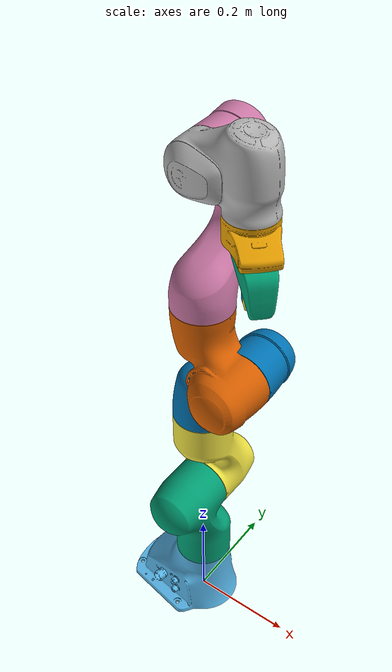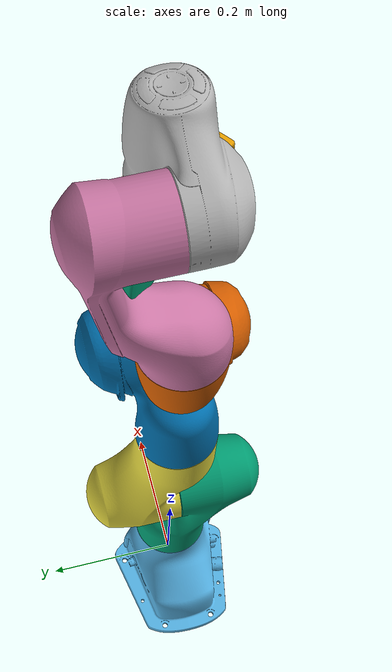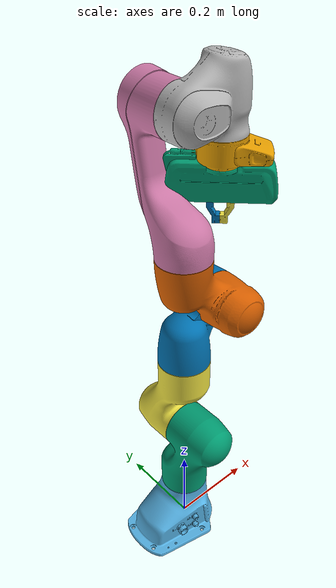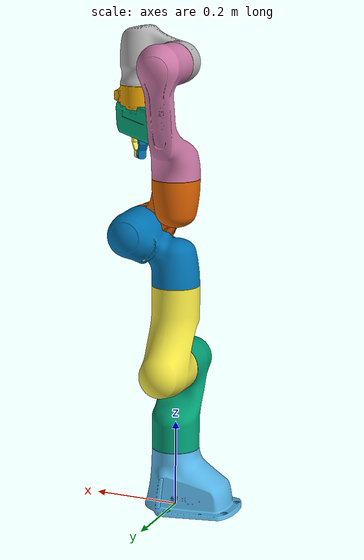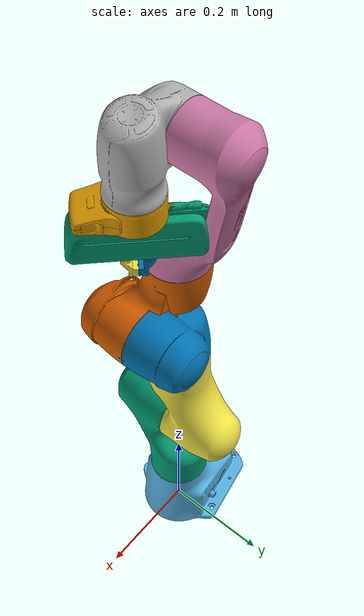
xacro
<?xml version="1.0"?>
<robot xmlns:xacro="http://www.ros.org/wiki/xacro" name="panda">
    <xacro:arg name="initial_positions_file" default="initial_positions.yaml" />

    <!-- Import panda urdf file -->
    <xacro:include filename="$(find robot_description)/urdf/panda.urdf.xacro" />

    <!-- Import control_xacro -->
    <xacro:include filename="panda.ros2_control.xacro" />

    <xacro:panda_ros2_control name="FakeSystem" initial_positions_file="$(arg initial_positions_file)"/>

</robot>

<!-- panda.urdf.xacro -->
<robot name="panda" xmlns:xacro="http://www.ros.org/wiki/xacro">

    <xacro:include filename="$(find robot_description)/urdf/panda.macro.xacro" />
    <xacro:include filename="$(find robot_description)/urdf/panda.ros2_control.xacro" />

    <xacro:panda />
    <xacro:panda_ros2_control name="panda_system" />

    <gazebo>
        <plugin name="gazebo_ros2_control" filename="libgazebo_ros2_control.so">
            <parameters>$(find robot_bringup)/config/controllers.yaml</parameters>
        </plugin>
    </gazebo>

</robot>

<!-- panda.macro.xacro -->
<robot xmlns:xacro="http://www.ros.org/wiki/xacro">
    <xacro:macro name="panda">

        <xacro:include filename="$(find robot_description)/urdf/robot.materials.xacro" />

        <link name="world" />

        <joint name="world_joint" type="fixed">
            <origin xyz="0 0 0" rpy="0 0 0" />
            <parent link="world" />
            <child link="panda_link0" />
        </joint>

        <link name="panda_link0">
            <visual>
                <geometry>
                    <mesh
                        filename="package://robot_description/meshes/visual/link0.stl" />
                </geometry>
            </visual>
            <collision>
                <geometry>
                    <mesh
                        filename="package://robot_description/meshes/collision/link0.stl" />
                </geometry>
            </collision>
            <inertial>

                <origin rpy="0 0 0" xyz="-0.041018 -0.00014 0.049974" />
                <mass value="0.629769" />
                <inertia ixx="0.00315" ixy="8.2904E-07" ixz="0.00015" iyy="0.00388" iyz="8.2299E-06"
                    izz="0.004285" />
            </inertial>
        </link>
        <link name="panda_link1">
            <visual>
                <geometry>
                    <mesh
                        filename="package://robot_description/meshes/visual/link1.stl" />
                </geometry>
            </visual>
            <collision>
                <geometry>
                    <mesh
                        filename="package://robot_description/meshes/collision/link1.stl" />
                </geometry>
            </collision>
            <inertial>
                <origin rpy="0 0 0" xyz="0.003875 0.002081 -0.04762" />
                <mass value="4.970684" />
                <inertia ixx="0.70337" ixy="-0.00013900" ixz="0.0067720" iyy="0.70661"
                    iyz="0.019169" izz="0.0091170" />
            </inertial>
        </link>
        <joint name="panda_joint1" type="revolute">
            <safety_controller k_position="100.0" k_velocity="40.0" soft_lower_limit="-2.8973"
                soft_upper_limit="2.8973" />
            <origin rpy="0 0 0" xyz="0 0 0.333" />
            <parent link="panda_link0" />
            <child link="panda_link1" />
            <axis xyz="0 0 1" />
            <limit effort="87" lower="-2.9671" upper="2.9671" velocity="2.3925" />
        </joint>
        <link name="panda_link2">
            <visual>
                <geometry>
                    <mesh
                        filename="package://robot_description/meshes/visual/link2.stl" />
                </geometry>
            </visual>
            <collision>
                <geometry>
                    <mesh
                        filename="package://robot_description/meshes/collision/link2.stl" />
                </geometry>
            </collision>
            <inertial>
                <origin rpy="0 0 0" xyz=" -0.003141 -0.02872  0.003495" />
                <mass value="0.646926" />
                <inertia ixx="0.0079620" ixy="-3.9250e-3" ixz="1.0254e-02" iyy="2.8110e-02"
                    iyz="7.0400e-04" izz="2.5995e-02" />
            </inertial>
        </link>
        <joint name="panda_joint2" type="revolute">
            <safety_controller k_position="100.0" k_velocity="40.0" soft_lower_limit="-1.7628"
                soft_upper_limit="1.7628" />
            <origin rpy="-1.57079632679 0 0" xyz="0 0 0" />
            <parent link="panda_link1" />
            <child link="panda_link2" />
            <axis xyz="0 0 1" />
            <limit effort="87" lower="-1.8326" upper="1.8326" velocity="2.3925" />
        </joint>
        <link name="panda_link3">
            <visual>
                <geometry>
                    <mesh
                        filename="package://robot_description/meshes/visual/link3.stl" />
                </geometry>
            </visual>
            <collision>
                <geometry>
                    <mesh
                        filename="package://robot_description/meshes/collision/link3.stl" />
                </geometry>
            </collision>
            <inertial>
                <origin rpy="0 0 0" xyz="2.7518e-02 3.9252e-02 -6.6502e-02" />
                <mass value="3.228604" />
                <inertia ixx="3.7242e-02" ixy="-4.7610e-03" ixz="-1.1396e-02" iyy="3.6155e-02"
                    iyz="-1.2805e-02" izz="1.0830e-02" />
            </inertial>
        </link>
        <joint name="panda_joint3" type="revolute">
            <safety_controller k_position="100.0" k_velocity="40.0" soft_lower_limit="-2.8973"
                soft_upper_limit="2.8973" />
            <origin rpy="1.57079632679 0 0" xyz="0 -0.316 0" />
            <parent link="panda_link2" />
            <child link="panda_link3" />
            <axis xyz="0 0 1" />
            <limit effort="87" lower="-2.9671" upper="2.9671" velocity="2.3925" />
        </joint>
        <link name="panda_link4">
            <visual>
                <geometry>
                    <mesh
                        filename="package://robot_description/meshes/visual/link4.stl" />
                </geometry>
            </visual>
            <collision>
                <geometry>
                    <mesh
                        filename="package://robot_description/meshes/collision/link4.stl" />
                </geometry>
            </collision>
            <inertial>
                <origin rpy="0 0 0" xyz="-5.317e-02 1.04419e-01 2.7454e-02" />
                <mass value="3.587895" />
                <inertia ixx="2.5853e-02" ixy="7.7960e-03" ixz="-1.3320e-03" iyy="1.9552e-02"
                    iyz="8.6410e-03" izz="2.8323e-02" />
            </inertial>
        </link>
        <joint name="panda_joint4" type="revolute">
            <safety_controller k_position="100.0" k_velocity="40.0" soft_lower_limit="-3.0718"
                soft_upper_limit="0.0175" />
            <origin rpy="1.57079632679 0 0" xyz="0.0825 0 0" />
            <parent link="panda_link3" />
            <child link="panda_link4" />
            <axis xyz="0 0 1" />
            <limit effort="87" lower="-3.1416" upper="0.0873" velocity="2.3925" />
        </joint>
        <link name="panda_link5">
            <visual>
                <geometry>
                    <mesh
                        filename="package://robot_description/meshes/visual/link5.stl" />
                </geometry>
            </visual>
            <collision>
                <geometry>
                    <mesh
                        filename="package://robot_description/meshes/collision/link5.stl" />
                </geometry>
            </collision>
            <inertial>
                <origin rpy="0 0 0" xyz="-1.1953e-02 4.1065e-02 -3.8437e-02" />
                <mass value="1.225946" />
                <inertia ixx="3.5549e-02" ixy="-2.1170e-03" ixz="-4.0370e-03" iyy="2.9474e-02"
                    iyz="2.2900e-04" izz="8.6270e-03" />
            </inertial>
        </link>
        <joint name="panda_joint5" type="revolute">
            <safety_controller k_position="100.0" k_velocity="40.0" soft_lower_limit="-2.8973"
                soft_upper_limit="2.8973" />
            <origin rpy="-1.57079632679 0 0" xyz="-0.0825 0.384 0" />
            <parent link="panda_link4" />
            <child link="panda_link5" />
            <axis xyz="0 0 1" />
            <limit effort="12" lower="-2.9671" upper="2.9671" velocity="2.8710" />
        </joint>
        <link name="panda_link6">
            <visual>
                <geometry>
                    <mesh
                        filename="package://robot_description/meshes/visual/link6.stl" />
                </geometry>
            </visual>
            <collision>
                <geometry>
                    <mesh
                        filename="package://robot_description/meshes/collision/link6.stl" />
                </geometry>
            </collision>
            <inertial>
                <origin rpy="0 0 0" xyz="6.0149e-02 -1.4117e-02 -1.0517e-02" />
                <mass value="1.666555" />
                <inertia ixx="1.9640e-03" ixy="1.0900e-04" ixz="-1.1580e-03" iyy="4.3540e-03"
                    iyz="3.4100e-04" izz="5.4330e-03" />
            </inertial>
        </link>
        <joint name="panda_joint6" type="revolute">
            <safety_controller k_position="100.0" k_velocity="40.0" soft_lower_limit="-0.0175"
                soft_upper_limit="3.7525" />
            <origin rpy="1.57079632679 0 0" xyz="0 0 0" />
            <parent link="panda_link5" />
            <child link="panda_link6" />
            <axis xyz="0 0 1" />
            <limit effort="12" lower="-0.0873" upper="3.8223" velocity="2.8710" />
        </joint>
        <link name="panda_link7">
            <visual>
                <geometry>
                    <mesh
                        filename="package://robot_description/meshes/visual/link7.stl" />
                </geometry>
            </visual>
            <collision>
                <geometry>
                    <mesh
                        filename="package://robot_description/meshes/collision/link7.stl" />
                </geometry>
            </collision>
            <inertial>
                <origin rpy="0 0 0" xyz="1.0517e-02 -4.252e-03 6.1597e-02" />
                <mass value="7.35522e-01" />
                <inertia ixx="1.2516e-02" ixy="-4.2800e-04" ixz="-1.1960e-03" iyy="1.0027e-02"
                    iyz="-7.4100e-04" izz="4.8150e-03" />
            </inertial>
        </link>
        <joint name="panda_joint7" type="revolute">
            <safety_controller k_position="100.0" k_velocity="40.0" soft_lower_limit="-2.8973"
                soft_upper_limit="2.8973" />
            <origin rpy="1.57079632679 0 0" xyz="0.088 0 0" />
            <parent link="panda_link6" />
            <child link="panda_link7" />
            <axis xyz="0 0 1" />
            <limit effort="12" lower="-2.9671" upper="2.9671" velocity="2.8710" />
        </joint>
        <link name="panda_link8" />
        <joint name="panda_joint8" type="fixed">
            <origin rpy="0 0 0" xyz="0 0 0.107" />
            <parent link="panda_link7" />
            <child link="panda_link8" />
            <axis xyz="0 0 0" />
        </joint>
        <joint name="panda_hand_joint" type="fixed">
            <parent link="panda_link8" />
            <child link="panda_hand" />
            <origin rpy="0 0 -0.785398163397" xyz="0 0 0" />
        </joint>
        <link name="panda_hand">
            <visual>
                <geometry>
                    <mesh
                        filename="package://robot_description/meshes/visual/hand.stl" />
                </geometry>
            </visual>
            <collision>
                <geometry>
                    <mesh
                        filename="package://robot_description/meshes/collision/hand.stl" />
                </geometry>
            </collision>
            <inertial>
                <origin xyz="0 0 0.02" />
                <mass value="0.5" />
                <inertia ixx="0.001" ixy="0" ixz="0"
                    iyy="0.001" iyz="0"
                    izz="0.001" />
            </inertial>
        </link>
        <link name="panda_leftfinger">
            <visual>
                <geometry>
                    <mesh
                        filename="package://robot_description/meshes/visual/finger.stl" />
                </geometry>
            </visual>
            <collision>
                <geometry>
                    <mesh
                        filename="package://robot_description/meshes/collision/finger.stl" />
                </geometry>
            </collision>
            <inertial>
                <origin xyz="0 0 0.02" />
                <mass value="0.3" />
                <inertia ixx="0.001" ixy="0" ixz="0"
                    iyy="0.001" iyz="0"
                    izz="0.001" />
            </inertial>
        </link>
        <link name="panda_rightfinger">
            <visual>
                <origin rpy="0 0 3.14159265359" xyz="0 0 0" />
                <geometry>
                    <mesh
                        filename="package://robot_description/meshes/visual/finger.stl" />
                </geometry>
            </visual>
            <collision>
                <origin rpy="0 0 3.14159265359" xyz="0 0 0" />
                <geometry>
                    <mesh
                        filename="package://robot_description/meshes/collision/finger.stl" />
                </geometry>
            </collision>
            <inertial>
                <origin xyz="0 0 0.02" />
                <mass value="0.3" />
                <inertia ixx="0.001" ixy="0" ixz="0"
                    iyy="0.001" iyz="0"
                    izz="0.001" />
            </inertial>
        </link>
        <joint name="panda_finger_joint1" type="prismatic">
            <parent link="panda_hand" />
            <child link="panda_leftfinger" />
            <origin rpy="0 0 0" xyz="0 0 0.0584" />
            <axis xyz="0 1 0" />
            <limit effort="20" lower="0.0" upper="0.04" velocity="0.2" />
        </joint>
        <joint name="panda_finger_joint2" type="prismatic">
            <parent link="panda_hand" />
            <child link="panda_rightfinger" />
            <origin rpy="0 0 0" xyz="0 0 0.0584" />
            <axis xyz="0 -1 0" />
            <limit effort="20" lower="0.0" upper="0.04" velocity="0.2" />
            <mimic joint="panda_finger_joint1" />
        </joint>

        <gazebo reference="panda_link0">
            <visual>
                <material>
                    <ambient>0.5 0.5 0.5 1</ambient>
                    <diffuse>0.5 0.5 0.5 1</diffuse>
                    <specular>0 0 0 1</specular>
                    <emissive>0 0 0 1</emissive>
                </material>
            </visual>
        </gazebo>

        <gazebo reference="panda_link1">
            <visual>
                <material>
                    <ambient>0.7 0.7 0.7 1</ambient>
                    <diffuse>0.7 0.7 0.7 1</diffuse>
                    <specular>0 0 0 1</specular>
                    <emissive>0 0 0 1</emissive>
                </material>
            </visual>
        </gazebo>

        <gazebo reference="panda_link2">
            <visual>
                <material>
                    <ambient>0.5 0.5 0.5 1</ambient>
                    <diffuse>0.5 0.5 0.5 1</diffuse>
                    <specular>0 0 0 1</specular>
                    <emissive>0 0 0 1</emissive>
                </material>
            </visual>

        </gazebo>

        <gazebo reference="panda_link3">
            <visual>
                <material>
                    <ambient>0.7 0.7 0.7 1</ambient>
                    <diffuse>0.7 0.7 0.7 1</diffuse>
                    <specular>0 0 0 1</specular>
                    <emissive>0 0 0 1</emissive>
                </material>
            </visual>
        </gazebo>

        <gazebo reference="panda_link4">
            <visual>
                <material>
                    <ambient>0.5 0.5 0.5 1</ambient>
                    <diffuse>0.5 0.5 0.5 1</diffuse>
                    <specular>0 0 0 1</specular>
                    <emissive>0 0 0 1</emissive>
                </material>
            </visual>
        </gazebo>

        <gazebo reference="panda_link5">
            <visual>
                <material>
                    <ambient>0.7 0.7 0.7 1</ambient>
                    <diffuse>0.7 0.7 0.7 1</diffuse>
                    <specular>0 0 0 1</specular>
                    <emissive>0 0 0 1</emissive>
                </material>
            </visual>
        </gazebo>

        <gazebo reference="panda_link6">
            <visual>
                <material>
                    <ambient>0.5 0.5 0.5 1</ambient>
                    <diffuse>0.5 0.5 0.5 1</diffuse>
                    <specular>0 0 0 1</specular>
                    <emissive>0 0 0 1</emissive>
                </material>
            </visual>
        </gazebo>

        <gazebo reference="panda_link7">
            <visual>
                <material>
                    <ambient>0.7 0.7 0.7 1</ambient>
                    <diffuse>0.7 0.7 0.7 1</diffuse>
                    <specular>0 0 0 1</specular>
                    <emissive>0 0 0 1</emissive>
                </material>
            </visual>
        </gazebo>

        <gazebo reference="panda_hand">
            <visual>
                <material>
                    <ambient>0.3 0.3 0.3 1</ambient>
                    <diffuse>0.3 0.3 0.3 1</diffuse>
                    <specular>0 0 0 1</specular>
                    <emissive>0 0 0 1</emissive>
                </material>
            </visual>
        </gazebo>

        <gazebo reference="panda_leftfinger">
            <visual>
                <material>
                    <ambient>0.1 0.1 0.1 1</ambient>
                    <diffuse>0.1 0.1 0.1 1</diffuse>
                    <specular>0 0 0 1</specular>
                    <emissive>0 0 0 1</emissive>
                </material>
            </visual>
        </gazebo>

        <gazebo reference="panda_rightfinger">
            <visual>
                <material>
                    <ambient>0.1 0.1 0.1 1</ambient>
                    <diffuse>0.1 0.1 0.1 1</diffuse>
                    <specular>0 0 0 1</specular>
                    <emissive>0 0 0 1</emissive>
                </material>
            </visual>
        </gazebo>

        <gazebo>
            <self_collide>true</self_collide>
        </gazebo>

    </xacro:macro>
</robot>

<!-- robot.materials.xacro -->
<robot>

  <material name="silver_g">
    <color rgba="0.700 0.700 0.700 1.000" />
  </material>

  <material name="black1">
    <color rgba="0.196 0.196 0.196 1.0" />
  </material>

  <material name="dark_grey">
    <color rgba="0.262 0.262 0.262 1" />
  </material>

  <material name="Silver">
    <color rgba="0.525 0.525 0.525 1" />
  </material>

  <material name="Violet">
    <color rgba="0.58039215686 0 0.82745098039 1.0" />
  </material>

  <material name="Black">
    <color rgba="0.0 0.0 0.0 1.0" />
  </material>

  <material name="Grey">
    <color rgba="0.4 0.4 0.4 1.0" />
  </material>

  <material name="Brown">
    <color rgba="${222/255} ${207/255} ${195/255} 1.0" />
  </material>

  <material name="White">
    <color rgba="1.0 1.0 1.0 1.0" />
  </material>

  <material name="Indigo">
    <color rgba="0.29411764705 0 0.50980392156 1.0" />
  </material>

  <material name="Blue">
    <color rgba="0 0 1.0 1.0" />
  </material>

  <material name="Green">
    <color rgba="0 1.0 0 1.0" />
  </material>

  <material name="Yellow">
    <color rgba="1.0 1.0 0 1.0" />
  </material>

  <material name="Orange">
    <color rgba="1.0 0.49803921568 0 1.0" />
  </material>

  <material name="Red">
    <color rgba="1.0 0.0 0.0 1.0" />
  </material>

</robot>
